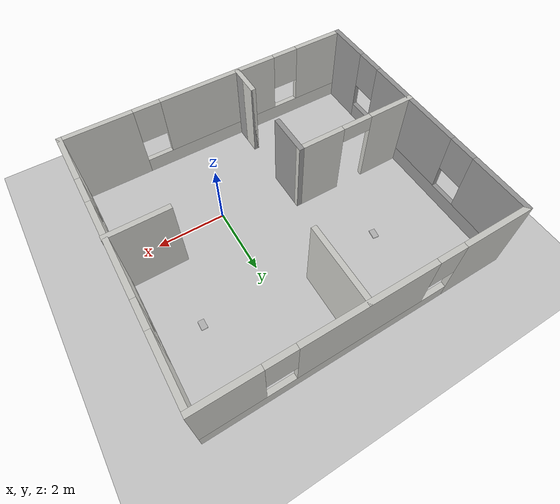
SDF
<sdf version="1.7">
 <world name="default">
  <light name="sun" type="directional">
   <pose>0 0 10 0 -0 0</pose>
   <diffuse>0.8 0.8 0.8 1</diffuse>
   <specular>0.2 0.2 0.2 1</specular>
   <attenuation>
    <range>1000</range>
    <constant>0.9</constant>
    <linear>0.01</linear>
    <quadratic>0.001</quadratic>
   </attenuation>
   <direction>-0.5 0.1 -0.9</direction>
   <spot><inner_angle>0</inner_angle><outer_angle>0</outer_angle><falloff>0</falloff></spot>
  </light>
  <model name="ground_plane">
   <static>1</static>
   <link name="link">
    <collision name="collision">
     <geometry><plane><normal>0 0 1</normal><size>100 100</size></plane></geometry>
     <surface><friction><ode><mu>100</mu><mu2>50</mu2></ode></friction></surface>
    </collision>
    <visual name="visual">
     <cast_shadows>0</cast_shadows>
     <geometry><plane><normal>0 0 1</normal><size>100 100</size></plane></geometry>
     <material>
      <script><uri>file://media/materials/scripts/gazebo.material</uri><name>Gazebo/Grey</name></script>
     </material>
    </visual>
   </link>
  </model>
  <gravity>0 0 -9.8</gravity>
  <magnetic_field>6e-06 2.3e-05 -4.2e-05</magnetic_field>
  <atmosphere type="adiabatic"/>
  <physics type="ode">
   <max_step_size>0.001</max_step_size>
   <real_time_factor>1</real_time_factor>
   <real_time_update_rate>1000</real_time_update_rate>
  </physics>
  <scene><ambient>0.4 0.4 0.4 1</ambient><background>0.7 0.7 0.7 1</background><shadows>1</shadows></scene>
  <audio><device>default</device></audio>
  <spherical_coordinates>
   <surface_model>EARTH_WGS84</surface_model>
   <latitude_deg>0</latitude_deg>
   <longitude_deg>0</longitude_deg>
   <elevation>0</elevation>
   <heading_deg>0</heading_deg>
  </spherical_coordinates>
  <model name="book_10">
   <link name="cover">
    <pose>0 -0.000108 0.015405 0 -0 0</pose>
    <visual name="visual">
     <geometry><box><size>0.245 0.16 0.03</size></box></geometry>
     <material>
      <script>
       <uri>model://book_10/materials/scripts</uri>
       <uri>model://book_10/materials/textures</uri>
       <name>book_10</name>
      </script>
     </material>
    </visual>
    <collision name="collision"><geometry><box><size>0.245 0.16 0.03</size></box></geometry></collision>
   </link>
   <link name="page">
    <pose>0 0.000608 0.015405 0 -0 0</pose>
    <visual name="visual">
     <geometry><box><size>0.24502 0.15862 0.028</size></box></geometry>
     <material>
      <lighting>1</lighting>
      <ambient>1 1 1 1</ambient>
      <diffuse>1 1 1 1</diffuse>
      <specular>0.01 0.01 0.01 1</specular>
      <emissive>0 0 0 1</emissive>
      <shader type="vertex"><normal_map>__default__</normal_map></shader>
     </material>
    </visual>
    <collision name="collision"><geometry><box><size>0.245 0.16 0.03</size></box></geometry></collision>
   </link>
   <static>1</static>
   <pose>-2.8831 3.22533 1.04702 0 -0 1.43256</pose>
  </model>
  <model name="book_2">
   <link name="cover">
    <pose>0 -0.000108 0.015405 0 -0 0</pose>
    <visual name="visual">
     <geometry><box><size>0.245 0.16 0.03</size></box></geometry>
     <material>
      <script>
       <uri>model://book_2/materials/scripts</uri>
       <uri>model://book_2/materials/textures</uri>
       <name>book_2</name>
      </script>
     </material>
    </visual>
    <collision name="collision"><geometry><box><size>0.245 0.16 0.03</size></box></geometry></collision>
   </link>
   <link name="page">
    <pose>0 0.000608 0.015405 0 -0 0</pose>
    <visual name="visual">
     <geometry><box><size>0.24502 0.15862 0.028</size></box></geometry>
     <material>
      <lighting>1</lighting>
      <ambient>1 1 1 1</ambient>
      <diffuse>1 1 1 1</diffuse>
      <specular>0.01 0.01 0.01 1</specular>
      <emissive>0 0 0 1</emissive>
      <shader type="vertex"><normal_map>__default__</normal_map></shader>
     </material>
    </visual>
    <collision name="collision"><geometry><box><size>0.245 0.16 0.03</size></box></geometry></collision>
   </link>
   <static>1</static>
   <pose>2.02368 3.14608 1.02892 0 -0 1.55345</pose>
  </model>
  <model name="structure_2">
   <pose>-1.29739 1.20124 0 0 -0 0</pose>
   <link name="Wall_0">
    <pose>-4.43221 -0 0 0 -0 1.5708</pose>
    <visual name="Wall_0_Visual_0">
     <pose>-3.31704 0 1.25 0 -0 0</pose>
     <geometry><box><size>1.36591 0.15 2.5</size></box></geometry>
     <material>
      <script><uri>file://media/materials/scripts/gazebo.material</uri><name>Gazebo/Grey</name></script>
      <ambient>1 1 1 1</ambient>
     </material>
     <meta><layer>0</layer></meta>
    </visual>
    <collision name="Wall_0_Collision_0">
     <geometry><box><size>1.36591 0.15 2.5</size></box></geometry>
     <pose>-3.31704 0 1.25 0 -0 0</pose>
    </collision>
    <visual name="Wall_0_Visual_1">
     <pose>0.682957 0 0.25 0 -0 0</pose>
     <geometry><box><size>6.63408 0.15 0.5</size></box></geometry>
     <material>
      <script><uri>file://media/materials/scripts/gazebo.material</uri><name>Gazebo/Grey</name></script>
      <ambient>1 1 1 1</ambient>
     </material>
     <meta><layer>0</layer></meta>
    </visual>
    <collision name="Wall_0_Collision_1">
     <geometry><box><size>6.63408 0.15 0.5</size></box></geometry>
     <pose>0.682957 0 0.25 0 -0 0</pose>
    </collision>
    <visual name="Wall_0_Visual_2">
     <pose>-0.244853 0 1.5 0 -0 0</pose>
     <geometry><box><size>3.17846 0.15 2</size></box></geometry>
     <material>
      <script><uri>file://media/materials/scripts/gazebo.material</uri><name>Gazebo/Grey</name></script>
      <ambient>1 1 1 1</ambient>
     </material>
     <meta><layer>0</layer></meta>
    </visual>
    <collision name="Wall_0_Collision_2">
     <geometry><box><size>3.17846 0.15 2</size></box></geometry>
     <pose>-0.244853 0 1.5 0 -0 0</pose>
    </collision>
    <visual name="Wall_0_Visual_3">
     <pose>3.07219 0 1.5 0 -0 0</pose>
     <geometry><box><size>1.85562 0.15 2</size></box></geometry>
     <material>
      <script><uri>file://media/materials/scripts/gazebo.material</uri><name>Gazebo/Grey</name></script>
      <ambient>1 1 1 1</ambient>
     </material>
     <meta><layer>0</layer></meta>
    </visual>
    <collision name="Wall_0_Collision_3">
     <geometry><box><size>1.85562 0.15 2</size></box></geometry>
     <pose>3.07219 0 1.5 0 -0 0</pose>
    </collision>
    <visual name="Wall_0_Visual_4">
     <pose>-2.23408 0 1.9 0 -0 0</pose>
     <geometry><box><size>0.8 0.15 1.2</size></box></geometry>
     <material>
      <script><uri>file://media/materials/scripts/gazebo.material</uri><name>Gazebo/Grey</name></script>
      <ambient>1 1 1 1</ambient>
     </material>
     <meta><layer>0</layer></meta>
    </visual>
    <collision name="Wall_0_Collision_4">
     <geometry><box><size>0.8 0.15 1.2</size></box></geometry>
     <pose>-2.23408 0 1.9 0 -0 0</pose>
    </collision>
    <visual name="Wall_0_Visual_5">
     <pose>1.74438 0 1.9 0 -0 0</pose>
     <geometry><box><size>0.8 0.15 1.2</size></box></geometry>
     <material>
      <script><uri>file://media/materials/scripts/gazebo.material</uri><name>Gazebo/Grey</name></script>
      <ambient>1 1 1 1</ambient>
     </material>
     <meta><layer>0</layer></meta>
    </visual>
    <collision name="Wall_0_Collision_5">
     <geometry><box><size>0.8 0.15 1.2</size></box></geometry>
     <pose>1.74438 0 1.9 0 -0 0</pose>
    </collision>
   </link>
   <link name="Wall_1">
    <pose>-0.007213 3.925 0 0 -0 0</pose>
    <visual name="Wall_1_Visual_0">
     <pose>-3.48213 0 1.25 0 -0 0</pose>
     <geometry><box><size>2.03574 0.15 2.5</size></box></geometry>
     <material>
      <script><uri>file://media/materials/scripts/gazebo.material</uri><name>Gazebo/CeilingTiled</name></script>
      <ambient>1 1 1 1</ambient>
     </material>
     <meta><layer>0</layer></meta>
    </visual>
    <collision name="Wall_1_Collision_0">
     <geometry><box><size>2.03574 0.15 2.5</size></box></geometry>
     <pose>-3.48213 0 1.25 0 -0 0</pose>
    </collision>
    <visual name="Wall_1_Visual_1">
     <pose>1.01787 0 0.25 0 -0 0</pose>
     <geometry><box><size>6.96426 0.15 0.5</size></box></geometry>
     <material>
      <script><uri>file://media/materials/scripts/gazebo.material</uri><name>Gazebo/CeilingTiled</name></script>
      <ambient>1 1 1 1</ambient>
     </material>
     <meta><layer>0</layer></meta>
    </visual>
    <collision name="Wall_1_Collision_1">
     <geometry><box><size>6.96426 0.15 0.5</size></box></geometry>
     <pose>1.01787 0 0.25 0 -0 0</pose>
    </collision>
    <visual name="Wall_1_Visual_2">
     <pose>0.167841 0 1.5 0 -0 0</pose>
     <geometry><box><size>3.66421 0.15 2</size></box></geometry>
     <material>
      <script><uri>file://media/materials/scripts/gazebo.material</uri><name>Gazebo/CeilingTiled</name></script>
      <ambient>1 1 1 1</ambient>
     </material>
     <meta><layer>0</layer></meta>
    </visual>
    <collision name="Wall_1_Collision_2">
     <geometry><box><size>3.66421 0.15 2</size></box></geometry>
     <pose>0.167841 0 1.5 0 -0 0</pose>
    </collision>
    <visual name="Wall_1_Visual_3">
     <pose>3.64997 0 1.5 0 -0 0</pose>
     <geometry><box><size>1.70006 0.15 2</size></box></geometry>
     <material>
      <script><uri>file://media/materials/scripts/gazebo.material</uri><name>Gazebo/CeilingTiled</name></script>
      <ambient>1 1 1 1</ambient>
     </material>
     <meta><layer>0</layer></meta>
    </visual>
    <collision name="Wall_1_Collision_3">
     <geometry><box><size>1.70006 0.15 2</size></box></geometry>
     <pose>3.64997 0 1.5 0 -0 0</pose>
    </collision>
    <visual name="Wall_1_Visual_4">
     <pose>-2.06426 0 1.9 0 -0 0</pose>
     <geometry><box><size>0.8 0.15 1.2</size></box></geometry>
     <material>
      <script><uri>file://media/materials/scripts/gazebo.material</uri><name>Gazebo/CeilingTiled</name></script>
      <ambient>1 1 1 1</ambient>
     </material>
     <meta><layer>0</layer></meta>
    </visual>
    <collision name="Wall_1_Collision_4">
     <geometry><box><size>0.8 0.15 1.2</size></box></geometry>
     <pose>-2.06426 0 1.9 0 -0 0</pose>
    </collision>
    <visual name="Wall_1_Visual_5">
     <pose>2.39994 0 1.9 0 -0 0</pose>
     <geometry><box><size>0.8 0.15 1.2</size></box></geometry>
     <material>
      <script><uri>file://media/materials/scripts/gazebo.material</uri><name>Gazebo/CeilingTiled</name></script>
      <ambient>1 1 1 1</ambient>
     </material>
     <meta><layer>0</layer></meta>
    </visual>
    <collision name="Wall_1_Collision_5">
     <geometry><box><size>0.8 0.15 1.2</size></box></geometry>
     <pose>2.39994 0 1.9 0 -0 0</pose>
    </collision>
   </link>
   <link name="Wall_11">
    <collision name="Wall_11_Collision">
     <geometry><box><size>1.25 0.15 2.5</size></box></geometry>
     <pose>0 0 1.25 0 -0 0</pose>
    </collision>
    <visual name="Wall_11_Visual">
     <pose>0 0 1.25 0 -0 0</pose>
     <geometry><box><size>1.25 0.15 2.5</size></box></geometry>
     <material>
      <script><uri>file://media/materials/scripts/gazebo.material</uri><name>Gazebo/Grey</name></script>
      <ambient>1 1 1 1</ambient>
     </material>
     <meta><layer>0</layer></meta>
    </visual>
    <pose>-0.829614 -0.989473 0 0 -0 -1.5708</pose>
   </link>
   <link name="Wall_13">
    <collision name="Wall_13_Collision">
     <geometry><box><size>1 0.15 2.5</size></box></geometry>
     <pose>0 0 1.25 0 -0 0</pose>
    </collision>
    <visual name="Wall_13_Visual">
     <pose>0 0 1.25 0 -0 0</pose>
     <geometry><box><size>1 0.15 2.5</size></box></geometry>
     <material>
      <script><uri>file://media/materials/scripts/gazebo.material</uri><name>Gazebo/Grey</name></script>
      <ambient>1 1 1 1</ambient>
     </material>
     <meta><layer>0</layer></meta>
    </visual>
    <pose>-0.849472 -3.45862 0 0 -0 1.5708</pose>
   </link>
   <link name="Wall_14">
    <collision name="Wall_14_Collision">
     <geometry><box><size>1 0.15 2.5</size></box></geometry>
     <pose>0 0 1.25 0 -0 0</pose>
    </collision>
    <visual name="Wall_14_Visual">
     <pose>0 0 1.25 0 -0 0</pose>
     <geometry><box><size>1 0.15 2.5</size></box></geometry>
     <material>
      <script><uri>file://media/materials/scripts/gazebo.material</uri><name>Gazebo/CeilingTiled</name></script>
      <ambient>1 1 1 1</ambient>
     </material>
     <meta><layer>0</layer></meta>
    </visual>
    <pose>-0.849472 -3.45862 0 0 -0 -1.5708</pose>
   </link>
   <link name="Wall_17">
    <collision name="Wall_17_Collision">
     <geometry><box><size>1.75 0.15 2.5</size></box></geometry>
     <pose>0 0 1.25 0 -0 0</pose>
    </collision>
    <visual name="Wall_17_Visual">
     <pose>0 0 1.25 0 -0 0</pose>
     <geometry><box><size>1.75 0.15 2.5</size></box></geometry>
     <material>
      <script><uri>file://media/materials/scripts/gazebo.material</uri><name>Gazebo/CeilingTiled</name></script>
      <ambient>1 1 1 1</ambient>
     </material>
     <meta><layer>0</layer></meta>
    </visual>
    <pose>3.63221 -0.476159 0 0 -0 0</pose>
   </link>
   <link name="Wall_19">
    <collision name="Wall_19_Collision">
     <geometry><box><size>2.25 0.15 2.5</size></box></geometry>
     <pose>0 0 1.25 0 -0 0</pose>
    </collision>
    <visual name="Wall_19_Visual">
     <pose>0 0 1.25 0 -0 0</pose>
     <geometry><box><size>2.25 0.15 2.5</size></box></geometry>
     <material>
      <script><uri>file://media/materials/scripts/gazebo.material</uri><name>Gazebo/CeilingTiled</name></script>
      <ambient>1 1 1 1</ambient>
     </material>
     <meta><layer>0</layer></meta>
    </visual>
    <pose>0.195324 2.86866 0 0 -0 -1.5708</pose>
   </link>
   <link name="Wall_2">
    <pose>4.41779 -0 0 0 -0 -1.5708</pose>
    <visual name="Wall_2_Visual_0">
     <pose>-3.03749 0 1.25 0 -0 0</pose>
     <geometry><box><size>1.92501 0.15 2.5</size></box></geometry>
     <material>
      <script><uri>file://media/materials/scripts/gazebo.material</uri><name>Gazebo/CeilingTiled</name></script>
      <ambient>1 1 1 1</ambient>
     </material>
     <meta><layer>0</layer></meta>
    </visual>
    <collision name="Wall_2_Collision_0">
     <geometry><box><size>1.92501 0.15 2.5</size></box></geometry>
     <pose>-3.03749 0 1.25 0 -0 0</pose>
    </collision>
    <visual name="Wall_2_Visual_1">
     <pose>0.962506 0 0.25 0 -0 0</pose>
     <geometry><box><size>6.07499 0.15 0.5</size></box></geometry>
     <material>
      <script><uri>file://media/materials/scripts/gazebo.material</uri><name>Gazebo/CeilingTiled</name></script>
      <ambient>1 1 1 1</ambient>
     </material>
     <meta><layer>0</layer></meta>
    </visual>
    <collision name="Wall_2_Collision_1">
     <geometry><box><size>6.07499 0.15 0.5</size></box></geometry>
     <pose>0.962506 0 0.25 0 -0 0</pose>
    </collision>
    <visual name="Wall_2_Visual_2">
     <pose>0.175461 0 1.5 0 -0 0</pose>
     <geometry><box><size>2.9009 0.15 2</size></box></geometry>
     <material>
      <script><uri>file://media/materials/scripts/gazebo.material</uri><name>Gazebo/CeilingTiled</name></script>
      <ambient>1 1 1 1</ambient>
     </material>
     <meta><layer>0</layer></meta>
    </visual>
    <collision name="Wall_2_Collision_2">
     <geometry><box><size>2.9009 0.15 2</size></box></geometry>
     <pose>0.175461 0 1.5 0 -0 0</pose>
    </collision>
    <visual name="Wall_2_Visual_3">
     <pose>3.21296 0 1.5 0 -0 0</pose>
     <geometry><box><size>1.57409 0.15 2</size></box></geometry>
     <material>
      <script><uri>file://media/materials/scripts/gazebo.material</uri><name>Gazebo/CeilingTiled</name></script>
      <ambient>1 1 1 1</ambient>
     </material>
     <meta><layer>0</layer></meta>
    </visual>
    <collision name="Wall_2_Collision_3">
     <geometry><box><size>1.57409 0.15 2</size></box></geometry>
     <pose>3.21296 0 1.5 0 -0 0</pose>
    </collision>
    <visual name="Wall_2_Visual_4">
     <pose>-1.67499 0 1.9 0 -0 0</pose>
     <geometry><box><size>0.8 0.15 1.2</size></box></geometry>
     <material>
      <script><uri>file://media/materials/scripts/gazebo.material</uri><name>Gazebo/CeilingTiled</name></script>
      <ambient>1 1 1 1</ambient>
     </material>
     <meta><layer>0</layer></meta>
    </visual>
    <collision name="Wall_2_Collision_4">
     <geometry><box><size>0.8 0.15 1.2</size></box></geometry>
     <pose>-1.67499 0 1.9 0 -0 0</pose>
    </collision>
    <visual name="Wall_2_Visual_5">
     <pose>2.02591 0 1.9 0 -0 0</pose>
     <geometry><box><size>0.8 0.15 1.2</size></box></geometry>
     <material>
      <script><uri>file://media/materials/scripts/gazebo.material</uri><name>Gazebo/CeilingTiled</name></script>
      <ambient>1 1 1 1</ambient>
     </material>
     <meta><layer>0</layer></meta>
    </visual>
    <collision name="Wall_2_Collision_5">
     <geometry><box><size>0.8 0.15 1.2</size></box></geometry>
     <pose>2.02591 0 1.9 0 -0 0</pose>
    </collision>
   </link>
   <link name="Wall_3">
    <pose>-0.007213 -3.925 0 0 -0 3.14159</pose>
    <visual name="Wall_3_Visual_0">
     <pose>-3.45336 0 1.25 0 -0 0</pose>
     <geometry><box><size>2.09328 0.15 2.5</size></box></geometry>
     <material>
      <script><uri>file://media/materials/scripts/gazebo.material</uri><name>Gazebo/CeilingTiled</name></script>
      <ambient>1 1 1 1</ambient>
     </material>
     <meta><layer>0</layer></meta>
    </visual>
    <collision name="Wall_3_Collision_0">
     <geometry><box><size>2.09328 0.15 2.5</size></box></geometry>
     <pose>-3.45336 0 1.25 0 -0 0</pose>
    </collision>
    <visual name="Wall_3_Visual_1">
     <pose>1.04664 0 0.25 0 -0 0</pose>
     <geometry><box><size>6.90672 0.15 0.5</size></box></geometry>
     <material>
      <script><uri>file://media/materials/scripts/gazebo.material</uri><name>Gazebo/CeilingTiled</name></script>
      <ambient>1 1 1 1</ambient>
     </material>
     <meta><layer>0</layer></meta>
    </visual>
    <collision name="Wall_3_Collision_1">
     <geometry><box><size>6.90672 0.15 0.5</size></box></geometry>
     <pose>1.04664 0 0.25 0 -0 0</pose>
    </collision>
    <visual name="Wall_3_Visual_2">
     <pose>0.22538 0 1.5 0 -0 0</pose>
     <geometry><box><size>3.66421 0.15 2</size></box></geometry>
     <material>
      <script><uri>file://media/materials/scripts/gazebo.material</uri><name>Gazebo/CeilingTiled</name></script>
      <ambient>1 1 1 1</ambient>
     </material>
     <meta><layer>0</layer></meta>
    </visual>
    <collision name="Wall_3_Collision_2">
     <geometry><box><size>3.66421 0.15 2</size></box></geometry>
     <pose>0.22538 0 1.5 0 -0 0</pose>
    </collision>
    <visual name="Wall_3_Visual_3">
     <pose>3.67874 0 1.5 0 -0 0</pose>
     <geometry><box><size>1.64252 0.15 2</size></box></geometry>
     <material>
      <script><uri>file://media/materials/scripts/gazebo.material</uri><name>Gazebo/CeilingTiled</name></script>
      <ambient>1 1 1 1</ambient>
     </material>
     <meta><layer>0</layer></meta>
    </visual>
    <collision name="Wall_3_Collision_3">
     <geometry><box><size>1.64252 0.15 2</size></box></geometry>
     <pose>3.67874 0 1.5 0 -0 0</pose>
    </collision>
    <visual name="Wall_3_Visual_4">
     <pose>-2.00672 0 1.9 0 -0 0</pose>
     <geometry><box><size>0.8 0.15 1.2</size></box></geometry>
     <material>
      <script><uri>file://media/materials/scripts/gazebo.material</uri><name>Gazebo/CeilingTiled</name></script>
      <ambient>1 1 1 1</ambient>
     </material>
     <meta><layer>0</layer></meta>
    </visual>
    <collision name="Wall_3_Collision_4">
     <geometry><box><size>0.8 0.15 1.2</size></box></geometry>
     <pose>-2.00672 0 1.9 0 -0 0</pose>
    </collision>
    <visual name="Wall_3_Visual_5">
     <pose>2.45748 0 1.9 0 -0 0</pose>
     <geometry><box><size>0.8 0.15 1.2</size></box></geometry>
     <material>
      <script><uri>file://media/materials/scripts/gazebo.material</uri><name>Gazebo/CeilingTiled</name></script>
      <ambient>1 1 1 1</ambient>
     </material>
     <meta><layer>0</layer></meta>
    </visual>
    <collision name="Wall_3_Collision_5">
     <geometry><box><size>0.8 0.15 1.2</size></box></geometry>
     <pose>2.45748 0 1.9 0 -0 0</pose>
    </collision>
   </link>
   <link name="Wall_7">
    <pose>-2.62961 -0.439474 0 0 -0 0</pose>
    <visual name="Wall_7_Visual_0">
     <pose>-1.161 0 1.25 0 -0 0</pose>
     <geometry><box><size>1.428 0.15 2.5</size></box></geometry>
     <material>
      <script><uri>file://media/materials/scripts/gazebo.material</uri><name>Gazebo/CeilingTiled</name></script>
      <ambient>1 1 1 1</ambient>
     </material>
     <meta><layer>0</layer></meta>
    </visual>
    <collision name="Wall_7_Collision_0">
     <geometry><box><size>1.428 0.15 2.5</size></box></geometry>
     <pose>-1.161 0 1.25 0 -0 0</pose>
    </collision>
    <visual name="Wall_7_Visual_1">
     <pose>1.164 0 1.25 0 -0 0</pose>
     <geometry><box><size>1.422 0.15 2.5</size></box></geometry>
     <material>
      <script><uri>file://media/materials/scripts/gazebo.material</uri><name>Gazebo/CeilingTiled</name></script>
      <ambient>1 1 1 1</ambient>
     </material>
     <meta><layer>0</layer></meta>
    </visual>
    <collision name="Wall_7_Collision_1">
     <geometry><box><size>1.422 0.15 2.5</size></box></geometry>
     <pose>1.164 0 1.25 0 -0 0</pose>
    </collision>
    <visual name="Wall_7_Visual_2">
     <pose>0.003004 0 2.25 0 -0 0</pose>
     <geometry><box><size>0.9 0.15 0.5</size></box></geometry>
     <material>
      <script><uri>file://media/materials/scripts/gazebo.material</uri><name>Gazebo/CeilingTiled</name></script>
      <ambient>1 1 1 1</ambient>
     </material>
     <meta><layer>0</layer></meta>
    </visual>
    <collision name="Wall_7_Collision_2">
     <geometry><box><size>0.9 0.15 0.5</size></box></geometry>
     <pose>0.003004 0 2.25 0 -0 0</pose>
    </collision>
   </link>
   <static>1</static>
  </model>
 </world>
</sdf>
